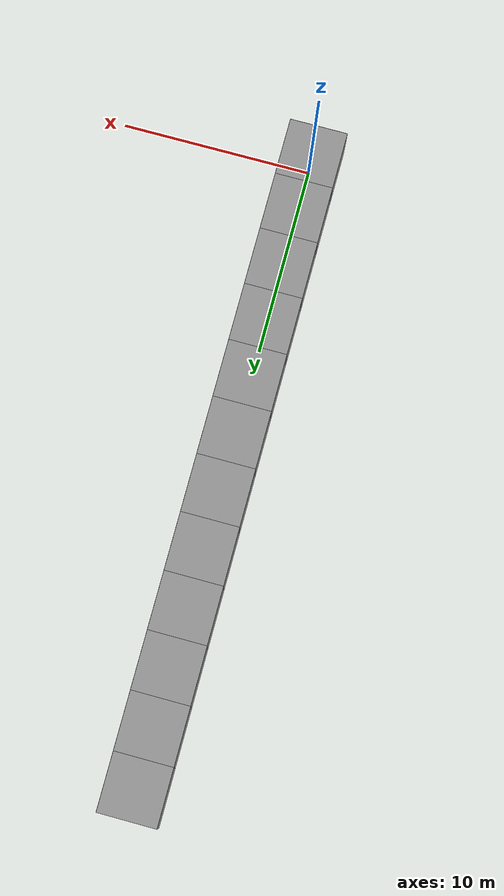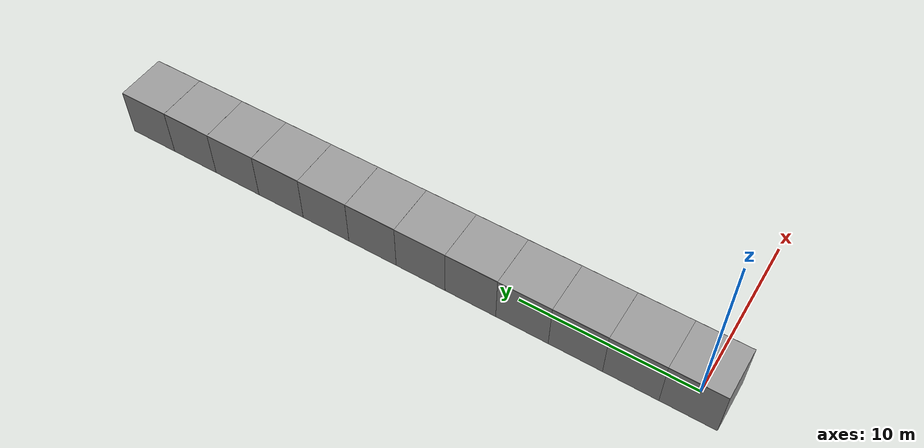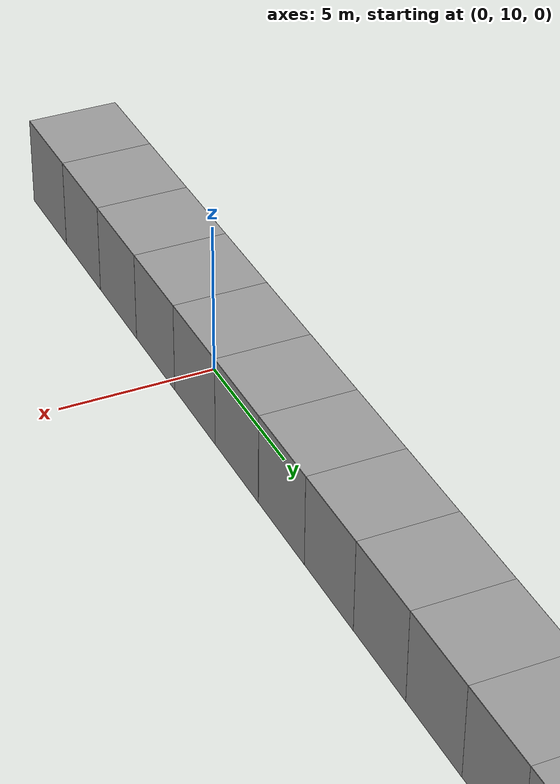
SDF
<?xml version='1.0' encoding='us-ascii'?>
<sdf version="1.6">
  <world name="default">
    <gravity>0 0 -9.8</gravity>
    <magnetic_field>6e-06 2.3e-05 -4.2e-05</magnetic_field>
    <atmosphere type="adiabatic" />
    <physics default="0" name="default_physics" type="ode">
      <max_step_size>0.001</max_step_size>
      <real_time_factor>1</real_time_factor>
      <real_time_update_rate>1000</real_time_update_rate>
    </physics>
    <scene>
      <ambient>0.4 0.4 0.4 1</ambient>
      <background>0.7 0.7 0.7 1</background>
      <shadows>0</shadows>
    </scene>
    <spherical_coordinates>
      <surface_model>EARTH_WGS84</surface_model>
      <latitude_deg>0</latitude_deg>
      <longitude_deg>0</longitude_deg>
      <elevation>0</elevation>
      <heading_deg>0</heading_deg>
    </spherical_coordinates>
    <gui fullscreen="0">
      <camera name="user_camera">
        <pose frame="">0 0 0.5 0 -0.23 1.57</pose>
        <view_controller>orbit</view_controller>
        <projection_type>perspective</projection_type>
      </camera>
    </gui>
    <model name="wall_back_0_0_0">
      <static>1</static>
      <pose>0.0 -1.5 1.5 0.0 0.0 0.0</pose>
      <link name="link">
        <collision name="collision">
          <geometry>
            <box>
              <size>3 0.02 3</size>
            </box>
          </geometry>
        </collision>
        <visual name="visual">
          <material>
            <script>
              <name>Gazebo/Grey</name>
              <uri>file://media/materials/scripts/gazebo.material</uri>
            </script>
          </material>
          <geometry>
            <box>
              <size>3 0.02 3</size>
            </box>
          </geometry>
        </visual>
      </link>
    </model>
    <model name="wall_right_0_0_0">
      <static>1</static>
      <pose>1.5 0.0 1.5 0.0 0.0 1.57</pose>
      <link name="link">
        <collision name="collision">
          <geometry>
            <box>
              <size>3 0.02 3</size>
            </box>
          </geometry>
        </collision>
        <visual name="visual">
          <material>
            <script>
              <name>Gazebo/Grey</name>
              <uri>file://media/materials/scripts/gazebo.material</uri>
            </script>
          </material>
          <geometry>
            <box>
              <size>3 0.02 3</size>
            </box>
          </geometry>
        </visual>
      </link>
    </model>
    <model name="wall_left_0_0_0">
      <static>1</static>
      <pose>-1.5 0.0 1.5 0.0 0.0 1.57</pose>
      <link name="link">
        <collision name="collision">
          <geometry>
            <box>
              <size>3 0.02 3</size>
            </box>
          </geometry>
        </collision>
        <visual name="visual">
          <material>
            <script>
              <name>Gazebo/Grey</name>
              <uri>file://media/materials/scripts/gazebo.material</uri>
            </script>
          </material>
          <geometry>
            <box>
              <size>3 0.02 3</size>
            </box>
          </geometry>
        </visual>
      </link>
    </model>
    <model name="wall_top_0_0_0">
      <static>1</static>
      <pose>0.0 0.0 3.0 1.57 0.0 0.0</pose>
      <link name="link">
        <collision name="collision">
          <geometry>
            <box>
              <size>3 0.02 3</size>
            </box>
          </geometry>
        </collision>
        <visual name="visual">
          <material>
            <script>
              <name>Gazebo/Grey</name>
              <uri>file://media/materials/scripts/gazebo.material</uri>
            </script>
          </material>
          <geometry>
            <box>
              <size>3 0.02 3</size>
            </box>
          </geometry>
        </visual>
      </link>
    </model>
    <model name="wall_bottom_0_0_0">
      <static>1</static>
      <pose>0.0 0.0 0.0 1.57 0.0 0.0</pose>
      <link name="link">
        <collision name="collision">
          <geometry>
            <box>
              <size>3 0.02 3</size>
            </box>
          </geometry>
        </collision>
        <visual name="visual">
          <material>
            <script>
              <name>Gazebo/Grey</name>
              <uri>file://media/materials/scripts/gazebo.material</uri>
            </script>
          </material>
          <geometry>
            <box>
              <size>3 0.02 3</size>
            </box>
          </geometry>
        </visual>
      </link>
    </model>
    <light name="lightball_0_0_0_0" type="point">
      <cast_shadows>0</cast_shadows>
      <pose>-0.25 -0.25 2.99 0.0 0.0 0.0</pose>
      <diffuse>10 10 10 255</diffuse>
      <specular>10 10 10 255</specular>
    </light>
    <light name="lightball_1_0_0_0" type="point">
      <cast_shadows>0</cast_shadows>
      <pose>0.25 -0.25 2.99 0.0 0.0 0.0</pose>
      <diffuse>10 10 10 255</diffuse>
      <specular>10 10 10 255</specular>
    </light>
    <light name="lightball_2_0_0_0" type="point">
      <cast_shadows>0</cast_shadows>
      <pose>-0.25 0.25 2.99 0.0 0.0 0.0</pose>
      <diffuse>10 10 10 255</diffuse>
      <specular>10 10 10 255</specular>
    </light>
    <light name="lightball_3_0_0_0" type="point">
      <cast_shadows>0</cast_shadows>
      <pose>0.25 0.25 2.99 0.0 0.0 0.0</pose>
      <diffuse>10 10 10 255</diffuse>
      <specular>10 10 10 255</specular>
    </light>
    <model name="wall_right_0_1_1">
      <static>1</static>
      <pose>1.5 3.0 1.5 0.0 0.0 1.57</pose>
      <link name="link">
        <collision name="collision">
          <geometry>
            <box>
              <size>3 0.02 3</size>
            </box>
          </geometry>
        </collision>
        <visual name="visual">
          <material>
            <script>
              <name>Gazebo/Grey</name>
              <uri>file://media/materials/scripts/gazebo.material</uri>
            </script>
          </material>
          <geometry>
            <box>
              <size>3 0.02 3</size>
            </box>
          </geometry>
        </visual>
      </link>
    </model>
    <model name="wall_left_0_1_1">
      <static>1</static>
      <pose>-1.5 3.0 1.5 0.0 0.0 1.57</pose>
      <link name="link">
        <collision name="collision">
          <geometry>
            <box>
              <size>3 0.02 3</size>
            </box>
          </geometry>
        </collision>
        <visual name="visual">
          <material>
            <script>
              <name>Gazebo/Grey</name>
              <uri>file://media/materials/scripts/gazebo.material</uri>
            </script>
          </material>
          <geometry>
            <box>
              <size>3 0.02 3</size>
            </box>
          </geometry>
        </visual>
      </link>
    </model>
    <model name="wall_top_0_1_1">
      <static>1</static>
      <pose>0.0 3.0 3.0 1.57 0.0 0.0</pose>
      <link name="link">
        <collision name="collision">
          <geometry>
            <box>
              <size>3 0.02 3</size>
            </box>
          </geometry>
        </collision>
        <visual name="visual">
          <material>
            <script>
              <name>Gazebo/Grey</name>
              <uri>file://media/materials/scripts/gazebo.material</uri>
            </script>
          </material>
          <geometry>
            <box>
              <size>3 0.02 3</size>
            </box>
          </geometry>
        </visual>
      </link>
    </model>
    <model name="wall_bottom_0_1_1">
      <static>1</static>
      <pose>0.0 3.0 0.0 1.57 0.0 0.0</pose>
      <link name="link">
        <collision name="collision">
          <geometry>
            <box>
              <size>3 0.02 3</size>
            </box>
          </geometry>
        </collision>
        <visual name="visual">
          <material>
            <script>
              <name>Gazebo/Grey</name>
              <uri>file://media/materials/scripts/gazebo.material</uri>
            </script>
          </material>
          <geometry>
            <box>
              <size>3 0.02 3</size>
            </box>
          </geometry>
        </visual>
      </link>
    </model>
    <light name="lightball_0_0_1_1" type="point">
      <cast_shadows>0</cast_shadows>
      <pose>-0.25 2.75 2.99 0.0 0.0 0.0</pose>
      <diffuse>10 10 10 255</diffuse>
      <specular>10 10 10 255</specular>
    </light>
    <light name="lightball_1_0_1_1" type="point">
      <cast_shadows>0</cast_shadows>
      <pose>0.25 2.75 2.99 0.0 0.0 0.0</pose>
      <diffuse>10 10 10 255</diffuse>
      <specular>10 10 10 255</specular>
    </light>
    <light name="lightball_2_0_1_1" type="point">
      <cast_shadows>0</cast_shadows>
      <pose>-0.25 3.25 2.99 0.0 0.0 0.0</pose>
      <diffuse>10 10 10 255</diffuse>
      <specular>10 10 10 255</specular>
    </light>
    <light name="lightball_3_0_1_1" type="point">
      <cast_shadows>0</cast_shadows>
      <pose>0.25 3.25 2.99 0.0 0.0 0.0</pose>
      <diffuse>10 10 10 255</diffuse>
      <specular>10 10 10 255</specular>
    </light>
    <model name="wall_right_0_2_1">
      <static>1</static>
      <pose>1.5 6.0 1.5 0.0 0.0 1.57</pose>
      <link name="link">
        <collision name="collision">
          <geometry>
            <box>
              <size>3 0.02 3</size>
            </box>
          </geometry>
        </collision>
        <visual name="visual">
          <material>
            <script>
              <name>Gazebo/Grey</name>
              <uri>file://media/materials/scripts/gazebo.material</uri>
            </script>
          </material>
          <geometry>
            <box>
              <size>3 0.02 3</size>
            </box>
          </geometry>
        </visual>
      </link>
    </model>
    <model name="wall_left_0_2_1">
      <static>1</static>
      <pose>-1.5 6.0 1.5 0.0 0.0 1.57</pose>
      <link name="link">
        <collision name="collision">
          <geometry>
            <box>
              <size>3 0.02 3</size>
            </box>
          </geometry>
        </collision>
        <visual name="visual">
          <material>
            <script>
              <name>Gazebo/Grey</name>
              <uri>file://media/materials/scripts/gazebo.material</uri>
            </script>
          </material>
          <geometry>
            <box>
              <size>3 0.02 3</size>
            </box>
          </geometry>
        </visual>
      </link>
    </model>
    <model name="wall_top_0_2_1">
      <static>1</static>
      <pose>0.0 6.0 3.0 1.57 0.0 0.0</pose>
      <link name="link">
        <collision name="collision">
          <geometry>
            <box>
              <size>3 0.02 3</size>
            </box>
          </geometry>
        </collision>
        <visual name="visual">
          <material>
            <script>
              <name>Gazebo/Grey</name>
              <uri>file://media/materials/scripts/gazebo.material</uri>
            </script>
          </material>
          <geometry>
            <box>
              <size>3 0.02 3</size>
            </box>
          </geometry>
        </visual>
      </link>
    </model>
    <model name="wall_bottom_0_2_1">
      <static>1</static>
      <pose>0.0 6.0 0.0 1.57 0.0 0.0</pose>
      <link name="link">
        <collision name="collision">
          <geometry>
            <box>
              <size>3 0.02 3</size>
            </box>
          </geometry>
        </collision>
        <visual name="visual">
          <material>
            <script>
              <name>Gazebo/Grey</name>
              <uri>file://media/materials/scripts/gazebo.material</uri>
            </script>
          </material>
          <geometry>
            <box>
              <size>3 0.02 3</size>
            </box>
          </geometry>
        </visual>
      </link>
    </model>
    <light name="lightball_0_0_2_1" type="point">
      <cast_shadows>0</cast_shadows>
      <pose>-0.25 5.75 2.99 0.0 0.0 0.0</pose>
      <diffuse>10 10 10 255</diffuse>
      <specular>10 10 10 255</specular>
    </light>
    <light name="lightball_1_0_2_1" type="point">
      <cast_shadows>0</cast_shadows>
      <pose>0.25 5.75 2.99 0.0 0.0 0.0</pose>
      <diffuse>10 10 10 255</diffuse>
      <specular>10 10 10 255</specular>
    </light>
    <light name="lightball_2_0_2_1" type="point">
      <cast_shadows>0</cast_shadows>
      <pose>-0.25 6.25 2.99 0.0 0.0 0.0</pose>
      <diffuse>10 10 10 255</diffuse>
      <specular>10 10 10 255</specular>
    </light>
    <light name="lightball_3_0_2_1" type="point">
      <cast_shadows>0</cast_shadows>
      <pose>0.25 6.25 2.99 0.0 0.0 0.0</pose>
      <diffuse>10 10 10 255</diffuse>
      <specular>10 10 10 255</specular>
    </light>
    <model name="wall_right_0_3_1">
      <static>1</static>
      <pose>1.5 9.0 1.5 0.0 0.0 1.57</pose>
      <link name="link">
        <collision name="collision">
          <geometry>
            <box>
              <size>3 0.02 3</size>
            </box>
          </geometry>
        </collision>
        <visual name="visual">
          <material>
            <script>
              <name>Gazebo/Grey</name>
              <uri>file://media/materials/scripts/gazebo.material</uri>
            </script>
          </material>
          <geometry>
            <box>
              <size>3 0.02 3</size>
            </box>
          </geometry>
        </visual>
      </link>
    </model>
    <model name="wall_left_0_3_1">
      <static>1</static>
      <pose>-1.5 9.0 1.5 0.0 0.0 1.57</pose>
      <link name="link">
        <collision name="collision">
          <geometry>
            <box>
              <size>3 0.02 3</size>
            </box>
          </geometry>
        </collision>
        <visual name="visual">
          <material>
            <script>
              <name>Gazebo/Grey</name>
              <uri>file://media/materials/scripts/gazebo.material</uri>
            </script>
          </material>
          <geometry>
            <box>
              <size>3 0.02 3</size>
            </box>
          </geometry>
        </visual>
      </link>
    </model>
    <model name="wall_top_0_3_1">
      <static>1</static>
      <pose>0.0 9.0 3.0 1.57 0.0 0.0</pose>
      <link name="link">
        <collision name="collision">
          <geometry>
            <box>
              <size>3 0.02 3</size>
            </box>
          </geometry>
        </collision>
        <visual name="visual">
          <material>
            <script>
              <name>Gazebo/Grey</name>
              <uri>file://media/materials/scripts/gazebo.material</uri>
            </script>
          </material>
          <geometry>
            <box>
              <size>3 0.02 3</size>
            </box>
          </geometry>
        </visual>
      </link>
    </model>
    <model name="wall_bottom_0_3_1">
      <static>1</static>
      <pose>0.0 9.0 0.0 1.57 0.0 0.0</pose>
      <link name="link">
        <collision name="collision">
          <geometry>
            <box>
              <size>3 0.02 3</size>
            </box>
          </geometry>
        </collision>
        <visual name="visual">
          <material>
            <script>
              <name>Gazebo/Grey</name>
              <uri>file://media/materials/scripts/gazebo.material</uri>
            </script>
          </material>
          <geometry>
            <box>
              <size>3 0.02 3</size>
            </box>
          </geometry>
        </visual>
      </link>
    </model>
    <light name="lightball_0_0_3_1" type="point">
      <cast_shadows>0</cast_shadows>
      <pose>-0.25 8.75 2.99 0.0 0.0 0.0</pose>
      <diffuse>10 10 10 255</diffuse>
      <specular>10 10 10 255</specular>
    </light>
    <light name="lightball_1_0_3_1" type="point">
      <cast_shadows>0</cast_shadows>
      <pose>0.25 8.75 2.99 0.0 0.0 0.0</pose>
      <diffuse>10 10 10 255</diffuse>
      <specular>10 10 10 255</specular>
    </light>
    <light name="lightball_2_0_3_1" type="point">
      <cast_shadows>0</cast_shadows>
      <pose>-0.25 9.25 2.99 0.0 0.0 0.0</pose>
      <diffuse>10 10 10 255</diffuse>
      <specular>10 10 10 255</specular>
    </light>
    <light name="lightball_3_0_3_1" type="point">
      <cast_shadows>0</cast_shadows>
      <pose>0.25 9.25 2.99 0.0 0.0 0.0</pose>
      <diffuse>10 10 10 255</diffuse>
      <specular>10 10 10 255</specular>
    </light>
    <model name="wall_right_0_4_1">
      <static>1</static>
      <pose>1.5 12.0 1.5 0.0 0.0 1.57</pose>
      <link name="link">
        <collision name="collision">
          <geometry>
            <box>
              <size>3 0.02 3</size>
            </box>
          </geometry>
        </collision>
        <visual name="visual">
          <material>
            <script>
              <name>Gazebo/Grey</name>
              <uri>file://media/materials/scripts/gazebo.material</uri>
            </script>
          </material>
          <geometry>
            <box>
              <size>3 0.02 3</size>
            </box>
          </geometry>
        </visual>
      </link>
    </model>
    <model name="wall_left_0_4_1">
      <static>1</static>
      <pose>-1.5 12.0 1.5 0.0 0.0 1.57</pose>
      <link name="link">
        <collision name="collision">
          <geometry>
            <box>
              <size>3 0.02 3</size>
            </box>
          </geometry>
        </collision>
        <visual name="visual">
          <material>
            <script>
              <name>Gazebo/Grey</name>
              <uri>file://media/materials/scripts/gazebo.material</uri>
            </script>
          </material>
          <geometry>
            <box>
              <size>3 0.02 3</size>
            </box>
          </geometry>
        </visual>
      </link>
    </model>
    <model name="wall_top_0_4_1">
      <static>1</static>
      <pose>0.0 12.0 3.0 1.57 0.0 0.0</pose>
      <link name="link">
        <collision name="collision">
          <geometry>
            <box>
              <size>3 0.02 3</size>
            </box>
          </geometry>
        </collision>
        <visual name="visual">
          <material>
            <script>
              <name>Gazebo/Grey</name>
              <uri>file://media/materials/scripts/gazebo.material</uri>
            </script>
          </material>
          <geometry>
            <box>
              <size>3 0.02 3</size>
            </box>
          </geometry>
        </visual>
      </link>
    </model>
    <model name="wall_bottom_0_4_1">
      <static>1</static>
      <pose>0.0 12.0 0.0 1.57 0.0 0.0</pose>
      <link name="link">
        <collision name="collision">
          <geometry>
            <box>
              <size>3 0.02 3</size>
            </box>
          </geometry>
        </collision>
        <visual name="visual">
          <material>
            <script>
              <name>Gazebo/Grey</name>
              <uri>file://media/materials/scripts/gazebo.material</uri>
            </script>
          </material>
          <geometry>
            <box>
              <size>3 0.02 3</size>
            </box>
          </geometry>
        </visual>
      </link>
    </model>
    <light name="lightball_0_0_4_1" type="point">
      <cast_shadows>0</cast_shadows>
      <pose>-0.25 11.75 2.99 0.0 0.0 0.0</pose>
      <diffuse>10 10 10 255</diffuse>
      <specular>10 10 10 255</specular>
    </light>
    <light name="lightball_1_0_4_1" type="point">
      <cast_shadows>0</cast_shadows>
      <pose>0.25 11.75 2.99 0.0 0.0 0.0</pose>
      <diffuse>10 10 10 255</diffuse>
      <specular>10 10 10 255</specular>
    </light>
    <light name="lightball_2_0_4_1" type="point">
      <cast_shadows>0</cast_shadows>
      <pose>-0.25 12.25 2.99 0.0 0.0 0.0</pose>
      <diffuse>10 10 10 255</diffuse>
      <specular>10 10 10 255</specular>
    </light>
    <light name="lightball_3_0_4_1" type="point">
      <cast_shadows>0</cast_shadows>
      <pose>0.25 12.25 2.99 0.0 0.0 0.0</pose>
      <diffuse>10 10 10 255</diffuse>
      <specular>10 10 10 255</specular>
    </light>
    <model name="wall_right_0_5_1">
      <static>1</static>
      <pose>1.5 15.0 1.5 0.0 0.0 1.57</pose>
      <link name="link">
        <collision name="collision">
          <geometry>
            <box>
              <size>3 0.02 3</size>
            </box>
          </geometry>
        </collision>
        <visual name="visual">
          <material>
            <script>
              <name>Gazebo/Grey</name>
              <uri>file://media/materials/scripts/gazebo.material</uri>
            </script>
          </material>
          <geometry>
            <box>
              <size>3 0.02 3</size>
            </box>
          </geometry>
        </visual>
      </link>
    </model>
    <model name="wall_left_0_5_1">
      <static>1</static>
      <pose>-1.5 15.0 1.5 0.0 0.0 1.57</pose>
      <link name="link">
        <collision name="collision">
          <geometry>
            <box>
              <size>3 0.02 3</size>
            </box>
          </geometry>
        </collision>
        <visual name="visual">
          <material>
            <script>
              <name>Gazebo/Grey</name>
              <uri>file://media/materials/scripts/gazebo.material</uri>
            </script>
          </material>
          <geometry>
            <box>
              <size>3 0.02 3</size>
            </box>
          </geometry>
        </visual>
      </link>
    </model>
    <model name="wall_top_0_5_1">
      <static>1</static>
      <pose>0.0 15.0 3.0 1.57 0.0 0.0</pose>
      <link name="link">
        <collision name="collision">
          <geometry>
            <box>
              <size>3 0.02 3</size>
            </box>
          </geometry>
        </collision>
        <visual name="visual">
          <material>
            <script>
              <name>Gazebo/Grey</name>
              <uri>file://media/materials/scripts/gazebo.material</uri>
            </script>
          </material>
          <geometry>
            <box>
              <size>3 0.02 3</size>
            </box>
          </geometry>
        </visual>
      </link>
    </model>
    <model name="wall_bottom_0_5_1">
      <static>1</static>
      <pose>0.0 15.0 0.0 1.57 0.0 0.0</pose>
      <link name="link">
        <collision name="collision">
          <geometry>
            <box>
              <size>3 0.02 3</size>
            </box>
          </geometry>
        </collision>
        <visual name="visual">
          <material>
            <script>
              <name>Gazebo/Grey</name>
              <uri>file://media/materials/scripts/gazebo.material</uri>
            </script>
          </material>
          <geometry>
            <box>
              <size>3 0.02 3</size>
            </box>
          </geometry>
        </visual>
      </link>
    </model>
    <light name="lightball_0_0_5_1" type="point">
      <cast_shadows>0</cast_shadows>
      <pose>-0.25 14.75 2.99 0.0 0.0 0.0</pose>
      <diffuse>10 10 10 255</diffuse>
      <specular>10 10 10 255</specular>
    </light>
    <light name="lightball_1_0_5_1" type="point">
      <cast_shadows>0</cast_shadows>
      <pose>0.25 14.75 2.99 0.0 0.0 0.0</pose>
      <diffuse>10 10 10 255</diffuse>
      <specular>10 10 10 255</specular>
    </light>
    <light name="lightball_2_0_5_1" type="point">
      <cast_shadows>0</cast_shadows>
      <pose>-0.25 15.25 2.99 0.0 0.0 0.0</pose>
      <diffuse>10 10 10 255</diffuse>
      <specular>10 10 10 255</specular>
    </light>
    <light name="lightball_3_0_5_1" type="point">
      <cast_shadows>0</cast_shadows>
      <pose>0.25 15.25 2.99 0.0 0.0 0.0</pose>
      <diffuse>10 10 10 255</diffuse>
      <specular>10 10 10 255</specular>
    </light>
    <model name="wall_right_0_6_1">
      <static>1</static>
      <pose>1.5 18.0 1.5 0.0 0.0 1.57</pose>
      <link name="link">
        <collision name="collision">
          <geometry>
            <box>
              <size>3 0.02 3</size>
            </box>
          </geometry>
        </collision>
        <visual name="visual">
          <material>
            <script>
              <name>Gazebo/Grey</name>
              <uri>file://media/materials/scripts/gazebo.material</uri>
            </script>
          </material>
          <geometry>
            <box>
              <size>3 0.02 3</size>
            </box>
          </geometry>
        </visual>
      </link>
    </model>
    <model name="wall_left_0_6_1">
      <static>1</static>
      <pose>-1.5 18.0 1.5 0.0 0.0 1.57</pose>
      <link name="link">
        <collision name="collision">
          <geometry>
            <box>
              <size>3 0.02 3</size>
            </box>
          </geometry>
        </collision>
        <visual name="visual">
          <material>
            <script>
              <name>Gazebo/Grey</name>
              <uri>file://media/materials/scripts/gazebo.material</uri>
            </script>
          </material>
          <geometry>
            <box>
              <size>3 0.02 3</size>
            </box>
          </geometry>
        </visual>
      </link>
    </model>
    <model name="wall_top_0_6_1">
      <static>1</static>
      <pose>0.0 18.0 3.0 1.57 0.0 0.0</pose>
      <link name="link">
        <collision name="collision">
          <geometry>
            <box>
              <size>3 0.02 3</size>
            </box>
          </geometry>
        </collision>
        <visual name="visual">
          <material>
            <script>
              <name>Gazebo/Grey</name>
              <uri>file://media/materials/scripts/gazebo.material</uri>
            </script>
          </material>
          <geometry>
            <box>
              <size>3 0.02 3</size>
            </box>
          </geometry>
        </visual>
      </link>
    </model>
    <model name="wall_bottom_0_6_1">
      <static>1</static>
      <pose>0.0 18.0 0.0 1.57 0.0 0.0</pose>
      <link name="link">
        <collision name="collision">
          <geometry>
            <box>
              <size>3 0.02 3</size>
            </box>
          </geometry>
        </collision>
        <visual name="visual">
          <material>
            <script>
              <name>Gazebo/Grey</name>
              <uri>file://media/materials/scripts/gazebo.material</uri>
            </script>
          </material>
          <geometry>
            <box>
              <size>3 0.02 3</size>
            </box>
          </geometry>
        </visual>
      </link>
    </model>
    <light name="lightball_0_0_6_1" type="point">
      <cast_shadows>0</cast_shadows>
      <pose>-0.25 17.75 2.99 0.0 0.0 0.0</pose>
      <diffuse>10 10 10 255</diffuse>
      <specular>10 10 10 255</specular>
    </light>
    <light name="lightball_1_0_6_1" type="point">
      <cast_shadows>0</cast_shadows>
      <pose>0.25 17.75 2.99 0.0 0.0 0.0</pose>
      <diffuse>10 10 10 255</diffuse>
      <specular>10 10 10 255</specular>
    </light>
    <light name="lightball_2_0_6_1" type="point">
      <cast_shadows>0</cast_shadows>
      <pose>-0.25 18.25 2.99 0.0 0.0 0.0</pose>
      <diffuse>10 10 10 255</diffuse>
      <specular>10 10 10 255</specular>
    </light>
    <light name="lightball_3_0_6_1" type="point">
      <cast_shadows>0</cast_shadows>
      <pose>0.25 18.25 2.99 0.0 0.0 0.0</pose>
      <diffuse>10 10 10 255</diffuse>
      <specular>10 10 10 255</specular>
    </light>
    <model name="wall_right_0_7_1">
      <static>1</static>
      <pose>1.5 21.0 1.5 0.0 0.0 1.57</pose>
      <link name="link">
        <collision name="collision">
          <geometry>
            <box>
              <size>3 0.02 3</size>
            </box>
          </geometry>
        </collision>
        <visual name="visual">
          <material>
            <script>
              <name>Gazebo/Grey</name>
              <uri>file://media/materials/scripts/gazebo.material</uri>
            </script>
          </material>
          <geometry>
            <box>
              <size>3 0.02 3</size>
            </box>
          </geometry>
        </visual>
      </link>
    </model>
    <model name="wall_left_0_7_1">
      <static>1</static>
      <pose>-1.5 21.0 1.5 0.0 0.0 1.57</pose>
      <link name="link">
        <collision name="collision">
          <geometry>
            <box>
              <size>3 0.02 3</size>
            </box>
          </geometry>
        </collision>
        <visual name="visual">
          <material>
            <script>
              <name>Gazebo/Grey</name>
              <uri>file://media/materials/scripts/gazebo.material</uri>
            </script>
          </material>
          <geometry>
            <box>
              <size>3 0.02 3</size>
            </box>
          </geometry>
        </visual>
      </link>
    </model>
    <model name="wall_top_0_7_1">
      <static>1</static>
      <pose>0.0 21.0 3.0 1.57 0.0 0.0</pose>
      <link name="link">
        <collision name="collision">
          <geometry>
            <box>
              <size>3 0.02 3</size>
            </box>
          </geometry>
        </collision>
        <visual name="visual">
          <material>
            <script>
              <name>Gazebo/Grey</name>
              <uri>file://media/materials/scripts/gazebo.material</uri>
            </script>
          </material>
          <geometry>
            <box>
              <size>3 0.02 3</size>
            </box>
          </geometry>
        </visual>
      </link>
    </model>
    <model name="wall_bottom_0_7_1">
      <static>1</static>
      <pose>0.0 21.0 0.0 1.57 0.0 0.0</pose>
      <link name="link">
        <collision name="collision">
          <geometry>
            <box>
              <size>3 0.02 3</size>
            </box>
          </geometry>
        </collision>
        <visual name="visual">
          <material>
            <script>
              <name>Gazebo/Grey</name>
              <uri>file://media/materials/scripts/gazebo.material</uri>
            </script>
          </material>
          <geometry>
            <box>
              <size>3 0.02 3</size>
            </box>
          </geometry>
        </visual>
      </link>
    </model>
    <light name="lightball_0_0_7_1" type="point">
      <cast_shadows>0</cast_shadows>
      <pose>-0.25 20.75 2.99 0.0 0.0 0.0</pose>
      <diffuse>10 10 10 255</diffuse>
      <specular>10 10 10 255</specular>
    </light>
    <light name="lightball_1_0_7_1" type="point">
      <cast_shadows>0</cast_shadows>
      <pose>0.25 20.75 2.99 0.0 0.0 0.0</pose>
      <diffuse>10 10 10 255</diffuse>
      <specular>10 10 10 255</specular>
    </light>
    <light name="lightball_2_0_7_1" type="point">
      <cast_shadows>0</cast_shadows>
      <pose>-0.25 21.25 2.99 0.0 0.0 0.0</pose>
      <diffuse>10 10 10 255</diffuse>
      <specular>10 10 10 255</specular>
    </light>
    <light name="lightball_3_0_7_1" type="point">
      <cast_shadows>0</cast_shadows>
      <pose>0.25 21.25 2.99 0.0 0.0 0.0</pose>
      <diffuse>10 10 10 255</diffuse>
      <specular>10 10 10 255</specular>
    </light>
    <model name="wall_right_0_8_1">
      <static>1</static>
      <pose>1.5 24.0 1.5 0.0 0.0 1.57</pose>
      <link name="link">
        <collision name="collision">
          <geometry>
            <box>
              <size>3 0.02 3</size>
            </box>
          </geometry>
        </collision>
        <visual name="visual">
          <material>
            <script>
              <name>Gazebo/Grey</name>
              <uri>file://media/materials/scripts/gazebo.material</uri>
            </script>
          </material>
          <geometry>
            <box>
              <size>3 0.02 3</size>
            </box>
          </geometry>
        </visual>
      </link>
    </model>
    <model name="wall_left_0_8_1">
      <static>1</static>
      <pose>-1.5 24.0 1.5 0.0 0.0 1.57</pose>
      <link name="link">
        <collision name="collision">
          <geometry>
            <box>
              <size>3 0.02 3</size>
            </box>
          </geometry>
        </collision>
        <visual name="visual">
          <material>
            <script>
              <name>Gazebo/Grey</name>
              <uri>file://media/materials/scripts/gazebo.material</uri>
            </script>
          </material>
          <geometry>
            <box>
              <size>3 0.02 3</size>
            </box>
          </geometry>
        </visual>
      </link>
    </model>
    <model name="wall_top_0_8_1">
      <static>1</static>
      <pose>0.0 24.0 3.0 1.57 0.0 0.0</pose>
      <link name="link">
        <collision name="collision">
          <geometry>
            <box>
              <size>3 0.02 3</size>
            </box>
          </geometry>
        </collision>
        <visual name="visual">
          <material>
            <script>
              <name>Gazebo/Grey</name>
              <uri>file://media/materials/scripts/gazebo.material</uri>
            </script>
          </material>
          <geometry>
            <box>
              <size>3 0.02 3</size>
            </box>
          </geometry>
        </visual>
      </link>
    </model>
    <model name="wall_bottom_0_8_1">
      <static>1</static>
      <pose>0.0 24.0 0.0 1.57 0.0 0.0</pose>
      <link name="link">
        <collision name="collision">
          <geometry>
            <box>
              <size>3 0.02 3</size>
            </box>
          </geometry>
        </collision>
        <visual name="visual">
          <material>
            <script>
              <name>Gazebo/Grey</name>
              <uri>file://media/materials/scripts/gazebo.material</uri>
            </script>
          </material>
          <geometry>
            <box>
              <size>3 0.02 3</size>
            </box>
          </geometry>
        </visual>
      </link>
    </model>
    <light name="lightball_0_0_8_1" type="point">
      <cast_shadows>0</cast_shadows>
      <pose>-0.25 23.75 2.99 0.0 0.0 0.0</pose>
      <diffuse>10 10 10 255</diffuse>
      <specular>10 10 10 255</specular>
    </light>
    <light name="lightball_1_0_8_1" type="point">
      <cast_shadows>0</cast_shadows>
      <pose>0.25 23.75 2.99 0.0 0.0 0.0</pose>
      <diffuse>10 10 10 255</diffuse>
      <specular>10 10 10 255</specular>
    </light>
    <light name="lightball_2_0_8_1" type="point">
      <cast_shadows>0</cast_shadows>
      <pose>-0.25 24.25 2.99 0.0 0.0 0.0</pose>
      <diffuse>10 10 10 255</diffuse>
      <specular>10 10 10 255</specular>
    </light>
    <light name="lightball_3_0_8_1" type="point">
      <cast_shadows>0</cast_shadows>
      <pose>0.25 24.25 2.99 0.0 0.0 0.0</pose>
      <diffuse>10 10 10 255</diffuse>
      <specular>10 10 10 255</specular>
    </light>
    <model name="wall_right_0_9_1">
      <static>1</static>
      <pose>1.5 27.0 1.5 0.0 0.0 1.57</pose>
      <link name="link">
        <collision name="collision">
          <geometry>
            <box>
              <size>3 0.02 3</size>
            </box>
          </geometry>
        </collision>
        <visual name="visual">
          <material>
            <script>
              <name>Gazebo/Grey</name>
              <uri>file://media/materials/scripts/gazebo.material</uri>
            </script>
          </material>
          <geometry>
            <box>
              <size>3 0.02 3</size>
            </box>
          </geometry>
        </visual>
      </link>
    </model>
    <model name="wall_left_0_9_1">
      <static>1</static>
      <pose>-1.5 27.0 1.5 0.0 0.0 1.57</pose>
      <link name="link">
        <collision name="collision">
          <geometry>
            <box>
              <size>3 0.02 3</size>
            </box>
          </geometry>
        </collision>
        <visual name="visual">
          <material>
            <script>
              <name>Gazebo/Grey</name>
              <uri>file://media/materials/scripts/gazebo.material</uri>
            </script>
          </material>
          <geometry>
            <box>
              <size>3 0.02 3</size>
            </box>
          </geometry>
        </visual>
      </link>
    </model>
    <model name="wall_top_0_9_1">
      <static>1</static>
      <pose>0.0 27.0 3.0 1.57 0.0 0.0</pose>
      <link name="link">
        <collision name="collision">
          <geometry>
            <box>
              <size>3 0.02 3</size>
            </box>
          </geometry>
        </collision>
        <visual name="visual">
          <material>
            <script>
              <name>Gazebo/Grey</name>
              <uri>file://media/materials/scripts/gazebo.material</uri>
            </script>
          </material>
          <geometry>
            <box>
              <size>3 0.02 3</size>
            </box>
          </geometry>
        </visual>
      </link>
    </model>
    <model name="wall_bottom_0_9_1">
      <static>1</static>
      <pose>0.0 27.0 0.0 1.57 0.0 0.0</pose>
      <link name="link">
        <collision name="collision">
          <geometry>
            <box>
              <size>3 0.02 3</size>
            </box>
          </geometry>
        </collision>
        <visual name="visual">
          <material>
            <script>
              <name>Gazebo/Grey</name>
              <uri>file://media/materials/scripts/gazebo.material</uri>
            </script>
          </material>
          <geometry>
            <box>
              <size>3 0.02 3</size>
            </box>
          </geometry>
        </visual>
      </link>
    </model>
    <light name="lightball_0_0_9_1" type="point">
      <cast_shadows>0</cast_shadows>
      <pose>-0.25 26.75 2.99 0.0 0.0 0.0</pose>
      <diffuse>10 10 10 255</diffuse>
      <specular>10 10 10 255</specular>
    </light>
    <light name="lightball_1_0_9_1" type="point">
      <cast_shadows>0</cast_shadows>
      <pose>0.25 26.75 2.99 0.0 0.0 0.0</pose>
      <diffuse>10 10 10 255</diffuse>
      <specular>10 10 10 255</specular>
    </light>
    <light name="lightball_2_0_9_1" type="point">
      <cast_shadows>0</cast_shadows>
      <pose>-0.25 27.25 2.99 0.0 0.0 0.0</pose>
      <diffuse>10 10 10 255</diffuse>
      <specular>10 10 10 255</specular>
    </light>
    <light name="lightball_3_0_9_1" type="point">
      <cast_shadows>0</cast_shadows>
      <pose>0.25 27.25 2.99 0.0 0.0 0.0</pose>
      <diffuse>10 10 10 255</diffuse>
      <specular>10 10 10 255</specular>
    </light>
    <model name="wall_right_0_10_1">
      <static>1</static>
      <pose>1.5 30.0 1.5 0.0 0.0 1.57</pose>
      <link name="link">
        <collision name="collision">
          <geometry>
            <box>
              <size>3 0.02 3</size>
            </box>
          </geometry>
        </collision>
        <visual name="visual">
          <material>
            <script>
              <name>Gazebo/Grey</name>
              <uri>file://media/materials/scripts/gazebo.material</uri>
            </script>
          </material>
          <geometry>
            <box>
              <size>3 0.02 3</size>
            </box>
          </geometry>
        </visual>
      </link>
    </model>
    <model name="wall_left_0_10_1">
      <static>1</static>
      <pose>-1.5 30.0 1.5 0.0 0.0 1.57</pose>
      <link name="link">
        <collision name="collision">
          <geometry>
            <box>
              <size>3 0.02 3</size>
            </box>
          </geometry>
        </collision>
        <visual name="visual">
          <material>
            <script>
              <name>Gazebo/Grey</name>
              <uri>file://media/materials/scripts/gazebo.material</uri>
            </script>
          </material>
          <geometry>
            <box>
              <size>3 0.02 3</size>
            </box>
          </geometry>
        </visual>
      </link>
    </model>
    <model name="wall_top_0_10_1">
      <static>1</static>
      <pose>0.0 30.0 3.0 1.57 0.0 0.0</pose>
      <link name="link">
        <collision name="collision">
          <geometry>
            <box>
              <size>3 0.02 3</size>
            </box>
          </geometry>
        </collision>
        <visual name="visual">
          <material>
            <script>
              <name>Gazebo/Grey</name>
              <uri>file://media/materials/scripts/gazebo.material</uri>
            </script>
          </material>
          <geometry>
            <box>
              <size>3 0.02 3</size>
            </box>
          </geometry>
        </visual>
      </link>
    </model>
    <model name="wall_bottom_0_10_1">
      <static>1</static>
      <pose>0.0 30.0 0.0 1.57 0.0 0.0</pose>
      <link name="link">
        <collision name="collision">
          <geometry>
            <box>
              <size>3 0.02 3</size>
            </box>
          </geometry>
        </collision>
        <visual name="visual">
          <material>
            <script>
              <name>Gazebo/Grey</name>
              <uri>file://media/materials/scripts/gazebo.material</uri>
            </script>
          </material>
          <geometry>
            <box>
              <size>3 0.02 3</size>
            </box>
          </geometry>
        </visual>
      </link>
    </model>
    <light name="lightball_0_0_10_1" type="point">
      <cast_shadows>0</cast_shadows>
      <pose>-0.25 29.75 2.99 0.0 0.0 0.0</pose>
      <diffuse>10 10 10 255</diffuse>
      <specular>10 10 10 255</specular>
    </light>
    <light name="lightball_1_0_10_1" type="point">
      <cast_shadows>0</cast_shadows>
      <pose>0.25 29.75 2.99 0.0 0.0 0.0</pose>
      <diffuse>10 10 10 255</diffuse>
      <specular>10 10 10 255</specular>
    </light>
    <light name="lightball_2_0_10_1" type="point">
      <cast_shadows>0</cast_shadows>
      <pose>-0.25 30.25 2.99 0.0 0.0 0.0</pose>
      <diffuse>10 10 10 255</diffuse>
      <specular>10 10 10 255</specular>
    </light>
    <light name="lightball_3_0_10_1" type="point">
      <cast_shadows>0</cast_shadows>
      <pose>0.25 30.25 2.99 0.0 0.0 0.0</pose>
      <diffuse>10 10 10 255</diffuse>
      <specular>10 10 10 255</specular>
    </light>
    <model name="wall_right_0_11_4">
      <static>1</static>
      <pose>1.5 33.0 1.5 0.0 0.0 1.57</pose>
      <link name="link">
        <collision name="collision">
          <geometry>
            <box>
              <size>3 0.02 3</size>
            </box>
          </geometry>
        </collision>
        <visual name="visual">
          <material>
            <script>
              <name>Gazebo/Grey</name>
              <uri>file://media/materials/scripts/gazebo.material</uri>
            </script>
          </material>
          <geometry>
            <box>
              <size>3 0.02 3</size>
            </box>
          </geometry>
        </visual>
      </link>
    </model>
    <model name="wall_left_0_11_4">
      <static>1</static>
      <pose>-1.5 33.0 1.5 0.0 0.0 1.57</pose>
      <link name="link">
        <collision name="collision">
          <geometry>
            <box>
              <size>3 0.02 3</size>
            </box>
          </geometry>
        </collision>
        <visual name="visual">
          <material>
            <script>
              <name>Gazebo/Grey</name>
              <uri>file://media/materials/scripts/gazebo.material</uri>
            </script>
          </material>
          <geometry>
            <box>
              <size>3 0.02 3</size>
            </box>
          </geometry>
        </visual>
      </link>
    </model>
    <model name="wall_top_0_11_4">
      <static>1</static>
      <pose>0.0 33.0 3.0 1.57 0.0 0.0</pose>
      <link name="link">
        <collision name="collision">
          <geometry>
            <box>
              <size>3 0.02 3</size>
            </box>
          </geometry>
        </collision>
        <visual name="visual">
          <material>
            <script>
              <name>Gazebo/Grey</name>
              <uri>file://media/materials/scripts/gazebo.material</uri>
            </script>
          </material>
          <geometry>
            <box>
              <size>3 0.02 3</size>
            </box>
          </geometry>
        </visual>
      </link>
    </model>
    <model name="wall_bottom_0_11_4">
      <static>1</static>
      <pose>0.0 33.0 0.0 1.57 0.0 0.0</pose>
      <link name="link">
        <collision name="collision">
          <geometry>
            <box>
              <size>3 0.02 3</size>
            </box>
          </geometry>
        </collision>
        <visual name="visual">
          <material>
            <script>
              <name>Gazebo/Grey</name>
              <uri>file://media/materials/scripts/gazebo.material</uri>
            </script>
          </material>
          <geometry>
            <box>
              <size>3 0.02 3</size>
            </box>
          </geometry>
        </visual>
      </link>
    </model>
    <light name="lightball_0_0_11_4" type="point">
      <cast_shadows>0</cast_shadows>
      <pose>-0.25 32.75 2.99 0.0 0.0 0.0</pose>
      <diffuse>10 10 10 255</diffuse>
      <specular>10 10 10 255</specular>
    </light>
    <light name="lightball_1_0_11_4" type="point">
      <cast_shadows>0</cast_shadows>
      <pose>0.25 32.75 2.99 0.0 0.0 0.0</pose>
      <diffuse>10 10 10 255</diffuse>
      <specular>10 10 10 255</specular>
    </light>
    <light name="lightball_2_0_11_4" type="point">
      <cast_shadows>0</cast_shadows>
      <pose>-0.25 33.25 2.99 0.0 0.0 0.0</pose>
      <diffuse>10 10 10 255</diffuse>
      <specular>10 10 10 255</specular>
    </light>
    <light name="lightball_3_0_11_4" type="point">
      <cast_shadows>0</cast_shadows>
      <pose>0.25 33.25 2.99 0.0 0.0 0.0</pose>
      <diffuse>10 10 10 255</diffuse>
      <specular>10 10 10 255</specular>
    </light>
  </world>
</sdf>
